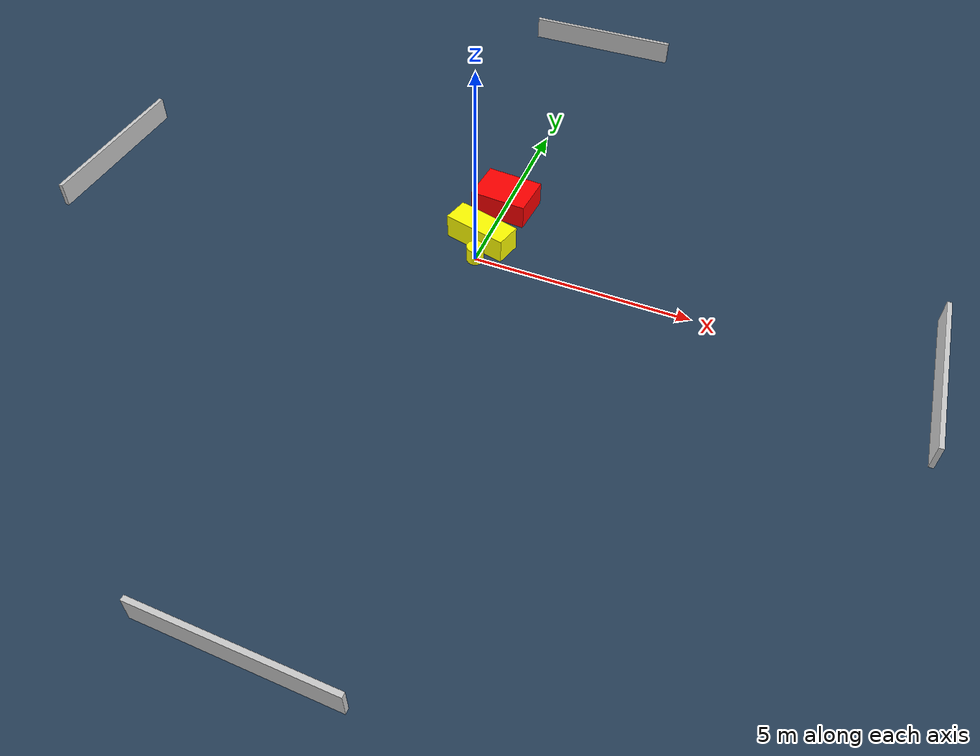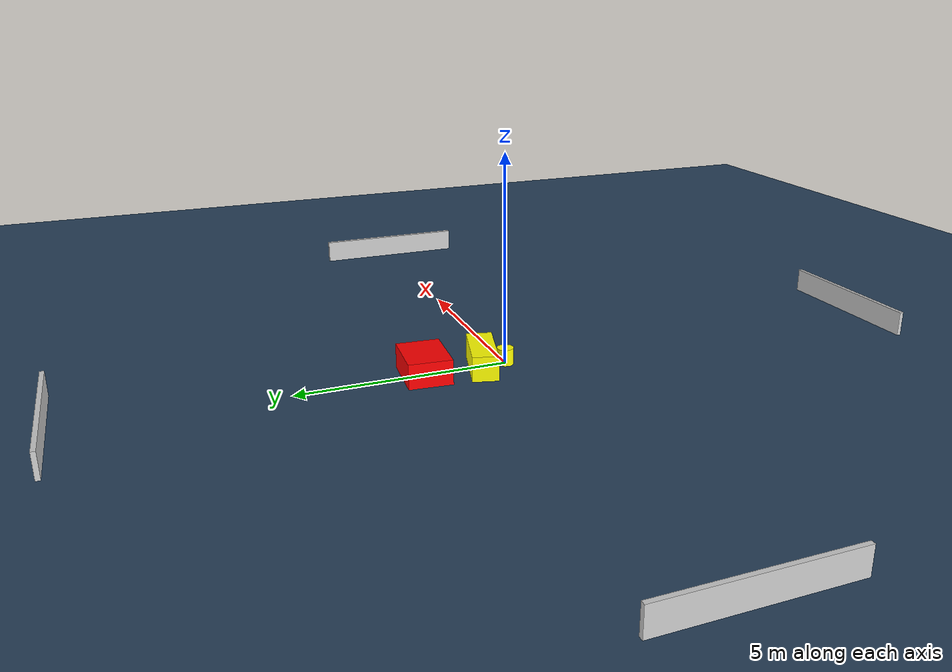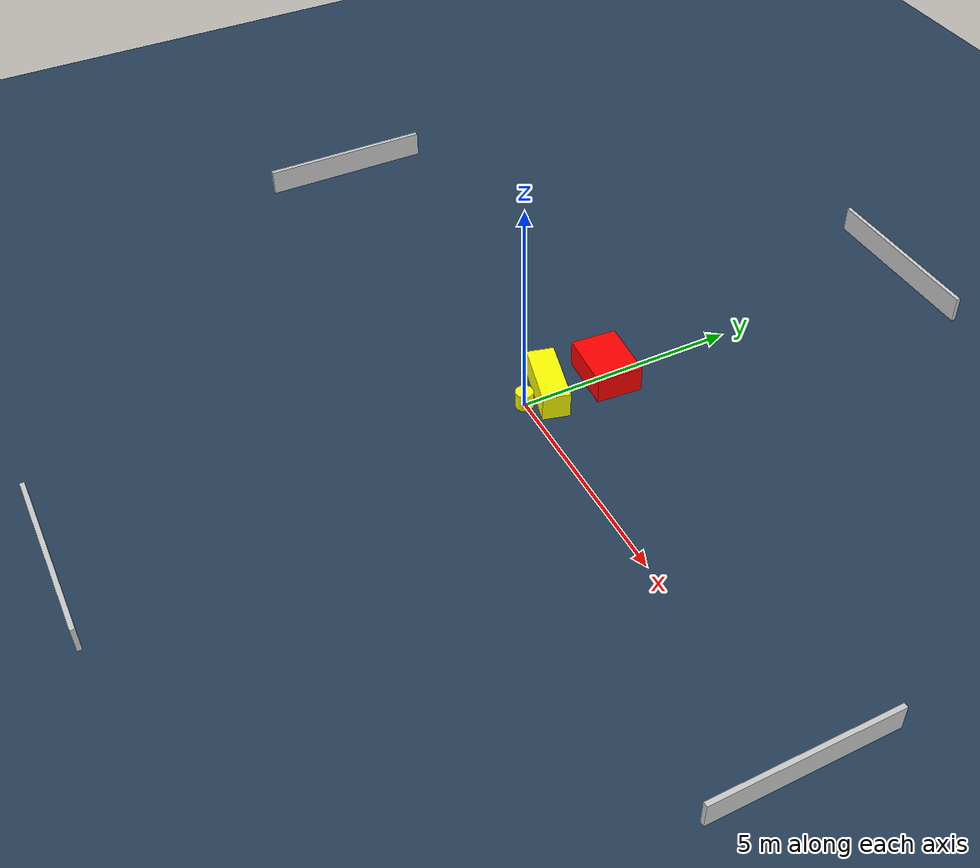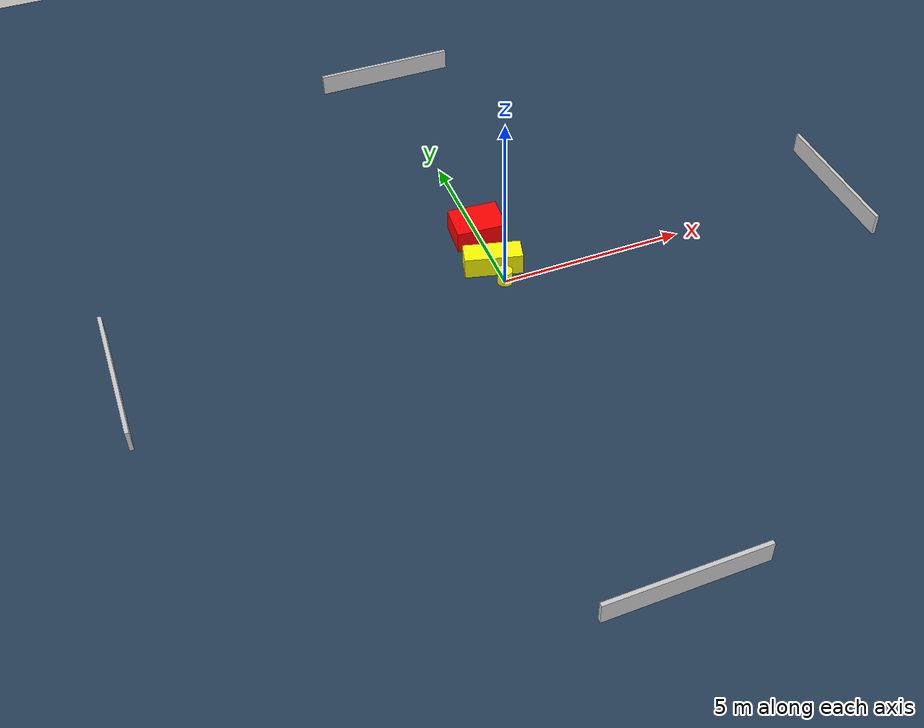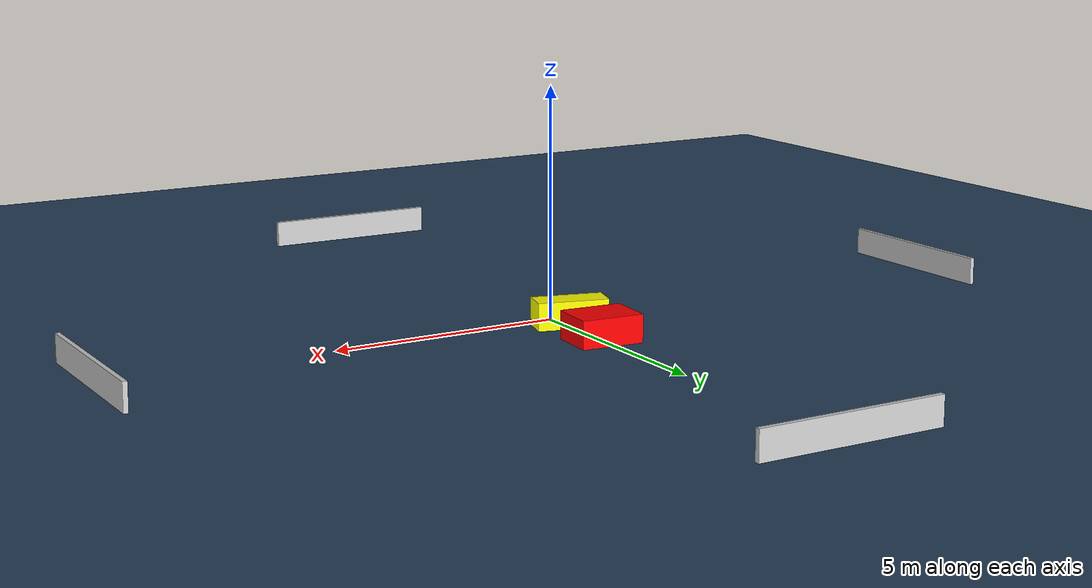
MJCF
<?xml version="1.0" ?>
<mujoco model="generated_environment">
  <option timestep="0.01" integrator="RK4" cone="elliptic"/>
  <default>
    <geom density="1"/>
  </default>
  <asset>
    <texture builtin="gradient" height="3072" name="skybox" rgb1="0.3 0.5 0.7" rgb2="0 0 0" type="skybox" width="512"/>
    <texture builtin="checker" height="300" name="groundplane" rgb1="0.2 0.3 0.4" rgb2="0.1 0.2 0.3" type="2d" width="300"/>
    <material name="groundplane" reflectance="0.2" texrepeat="5 5" texture="groundplane"/>
  </asset>
  <worldbody>
    <light dir="0 0 -1" directional="true" pos="0 0 1.5"/>
    <geom condim="3" friction="0.5 0.005 0.001" material="groundplane" name="floor" pos="0 0 0" size="0 0 0.05" type="plane"/>
    <body name="walls">
      <geom name="wall_1" condim="4" pos="-10.0 0.0 0.3" rgba="0.800000011920929 0.800000011920929 0.800000011920929 1.0" size="0.05 2.0 0.3" type="box"/>
      <geom name="wall_2" condim="4" pos="10.0 0.0 0.3" rgba="0.800000011920929 0.800000011920929 0.800000011920929 1.0" size="0.05 2.0 0.3" type="box"/>
      <geom name="wall_3" condim="4" pos="0.0 -10.0 0.3" rgba="0.800000011920929 0.800000011920929 0.800000011920929 1.0" size="2.0 0.05 0.3" type="box"/>
      <geom name="wall_4" condim="4" pos="0.0 10.0 0.3" rgba="0.800000011920929 0.800000011920929 0.800000011920929 1.0" size="2.0 0.05 0.3" type="box"/>
    </body>
    <body name="robot">
      <joint name="joint_x" type="slide" pos="0 0 0" axis="1 0 0"/>
      <joint name="joint_y" type="slide" pos="0 0 0" axis="0 1 0"/>
      <geom name="robot" type="cylinder" pos="0.0 0.0 0.2" size="0.2 0.2 0.0" mass="5.0" friction="1.0 0.005 0.0001" condim="4" rgba="1.0 1.0 0.0 1.0"/>
    </body>
    <body name="obstacle_1_movable">
      <geom name="obstacle_1_movable" condim="4" pos="-0.09496078866268347 0.6185105756831174 0.3" euler="0 0 345.29814328980797" friction="0.0 0.005 0.001" rgba="1.0 1.0 0.0 1.0" size="0.7684671371616754 0.30603890021344937 0.3" type="box" mass="0.1"/>
      <joint type="free"/>
    </body>
    <body name="obstacle_2_static">
      <geom name="obstacle_2_static" condim="4" pos="-0.006687968698914221 1.9984642452606383 0.3" euler="0 0 265.6370333179855" friction="0.0 0.005 0.001" rgba="1.0 0.0 0.0 1.0" size="0.5151272469653754 0.6807418624181217 0.3" type="box"/>
    </body>
  </worldbody>
  <actuator>
    <motor name="actuator_x" joint="joint_x" gear="1" ctrlrange="-1 1"/>
    <motor name="actuator_y" joint="joint_y" gear="1" ctrlrange="-1 1"/>
  </actuator>
</mujoco>
